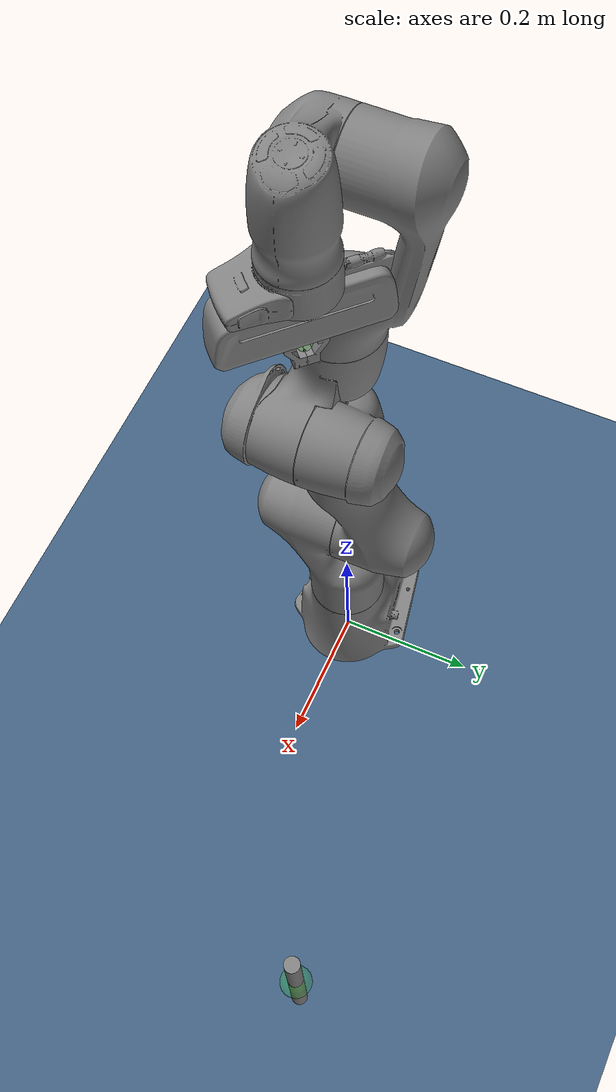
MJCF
<mujoco model='Franka-door'>

    <option gravity='0 0 0'/>
    <default>
         <geom margin='0.001' solref='0.002 1' solimp='0.8 0.8 0.1'/>
    </default>

    <compiler inertiafromgeom='true' angle='radian' meshdir="meshes/"/>

    <include file="franka-assets.xml"/>

    <worldbody>
        <!-- Floor -->
        <geom name='floor' pos='0 0 0' size='2 2 .01' type='plane' material="MatPlane" condim='4'/>
        <!-- Lighting -->
        <light directional='false' diffuse='.7 .7 .7' specular='0.03 0.03 0.03' pos='-1 -1.0 4.0' dir='1 1.0 -4'/>

        <!-- Robot -->
        <body name="robot" pos="0 0 0">
            <include file="franka.xml"/>
        </body>
        <!-- Door -->
        <body name='handle' pos='0.6 0.2 0.31' euler='0 0 3.1415'  user="1001 0 2002 -0.4 -0.1 0.252 0 0.3 0.45">
            <inertial pos='0 0 0' mass='0.2' />
            <joint name='articulation' pos='0 0.3 0' axis='0 0 1' type='hinge' range='-1.7 1.7' frictionloss='1'/>
            <geom name='handle' type='cylinder' size='0.01 0.1 0.01' pos='0 0 0' euler='0 0 0'/>
            <site name='handle' pos='0 0 0' size='0.02' rgba='0 1 0 0.125'/>
        </body>

    </worldbody>

</mujoco>

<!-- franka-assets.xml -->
<mujocoinclude>

    <default>
        <default class='visual'>
            <geom type='mesh' euler='1.57079 0.0 0.0'/>
        </default>
    </default>

    <asset>
        <texture type="skybox" builtin="gradient" width="128" height="128" rgb1=".4 .6 .8"
            rgb2="0 0 0"/>

        <texture name="texgeom" type="cube" builtin="flat" mark="cross" width="127" height="1278"
            rgb1="0.8 0.8 0.8" rgb2="0.8 0.8 0.8" markrgb="1 1 1" random="0.0"/>
        <texture name="texplane" type="2d" builtin="checker" rgb1=".4 .6 .8" rgb2=".1 0.15 0.2"
            width="512" height="512"/>
        <material name='MatPlane' reflectance='0.3' texture="texplane" texrepeat="1 1" texuniform="true"/>
        <material name='geom' texture="texgeom" texuniform="true"/>

        <mesh name="viz_finger" file="franka/finger.stl"/>
        <mesh name="viz_hand"   file="franka/hand.stl"/>
        <mesh name="viz_link0"  file="franka/link0.stl"/>
        <mesh name="viz_link1"  file="franka/link1.stl"/>
        <mesh name="viz_link2"  file="franka/link2.stl"/>
        <mesh name="viz_link3"  file="franka/link3.stl"/>
        <mesh name="viz_link4"  file="franka/link4.stl"/>
        <mesh name="viz_link5"  file="franka/link5.stl"/>
        <mesh name="viz_link6"  file="franka/link6.stl"/>
        <mesh name="viz_link7"  file="franka/link7.stl"/>
    </asset>

    <equality>
        <!-- Links default hand grippers together -->
        <joint name='finger2' joint1='finger1' joint2='finger2' polycoef="0 -1 0 0 0" />
    </equality>

    <actuator>

        <velocity name='joint1' ctrlrange='-2 2' kv='120'  joint='joint1' />
        <velocity name='joint2' ctrlrange='-2 2' kv='120'  joint='joint2' />
        <velocity name='joint3' ctrlrange='-2 2' kv='120'  joint='joint3' />
        <velocity name='joint4' ctrlrange='-2 2' kv='120'  joint='joint4' />
        <velocity name='joint5' ctrlrange='-2 2' kv='100'  joint='joint5' />
        <velocity name='joint6' ctrlrange='-2 2' kv='100'  joint='joint6' />
        <velocity name='joint7' ctrlrange='-2 2' kv='100'  joint='joint7' />
        <velocity name='finger' ctrlrange='-2 2' kv='100'  joint='finger2' />

    </actuator>

</mujocoinclude>

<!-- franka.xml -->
<mujocoinclude>

    <body name='link0' pos='0 0 0'>
        <geom name='vlink0' mesh='viz_link0' class='visual' contype='2' conaffinity='2'/>
        <body name='link1' pos='0 0 0.333'>
            <joint name='joint1' pos='0 0 -0.333' range='-2.8973 2.8973'  />
            <geom name='vlink1' mesh='viz_link1' class='visual'/>
            <body name='link2' pos='0 0 0' euler='-1.5707 0 0' >
                <joint name='joint2' pos='0 0 0' range='-1.7628 1.7628'  />
                <geom name='vlink2' mesh='viz_link2' class='visual'/>
                <body name='link3' pos='0 -0.316 0' euler='1.5707 0 0' >
                    <joint name='joint3' pos='0 0 -0.12' range='-2.8973 2.8973' />
                    <geom name='vlink3' mesh='viz_link3' class='visual'/>
                    <body name='link4' pos='0.0825 0 0' euler='1.5707 0 0' >
                        <joint name='joint4' pos='0 0 0' range='-3.0718 -0.0698' />
                        <geom name='vlink4' mesh='viz_link4' class='visual'/>
                        <body name='link5' pos='-0.0825 0.384 0' euler='-1.5707 0 0' >
                            <joint name='joint5' pos='0 0 -0.26' range='-2.8973 2.9873' />
                            <geom name='vlink5' mesh='viz_link5' class='visual'/>
                            <body name='link6' pos='0 0 0' euler='1.5707 0 0' >
                                <joint name='joint6' pos='0 0 0' range='-0.0175 3.7525' />
                                <geom name='vlink6' mesh='viz_link6' class='visual'/>
                                <body name='link7' pos='0.088 0 0' euler='1.5707 0 0' >
                                    <joint name='joint7' pos='0 0 0' range='-2.8973 2.9873' />
                                    <geom name='vlink7' mesh='viz_link7' class='visual'/>
                                    <!-- Hand Start-->
                                    <body name='hand' pos='0 0 0.107' euler='0 0 -0.7853981633974483' >
                                        <site name='grasp' pos='0 0 0.08' size='0.01' rgba='0 1 0 0.125'/>
                                        <geom name='vhand' mesh='viz_hand' class='visual'/>
                                        <body name='finger1' pos='0 0 0.0584' euler='0 0 0' >
                                            <joint name='finger1' type='slide'
                                                    axis='0 1 0' pos='0 0 0' range='0.0 0.03' />
                                            <geom name='vf1' mesh='viz_finger' class='visual'/>
                                        </body>
                                        <body name='finger2' pos='0 0 0.0584' euler='0 0 -3.1415' >
                                            <joint name='finger2' type='slide'
                                                    axis='0 -1 0' pos='0 0 0' range='-0.03 0' />
                                            <geom name='vf2' mesh='viz_finger' class='visual'/>
                                        </body>
                                    </body>
                                    <!-- Hand End -->
                                </body>
                            </body>
                        </body>
                    </body>
                </body>
            </body>
        </body>
    </body>
</mujocoinclude>
